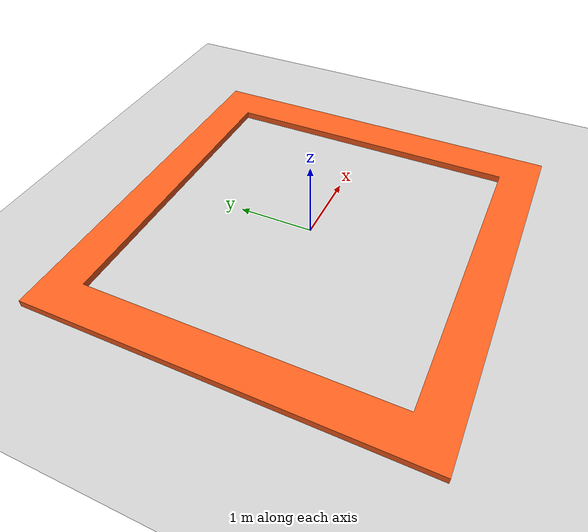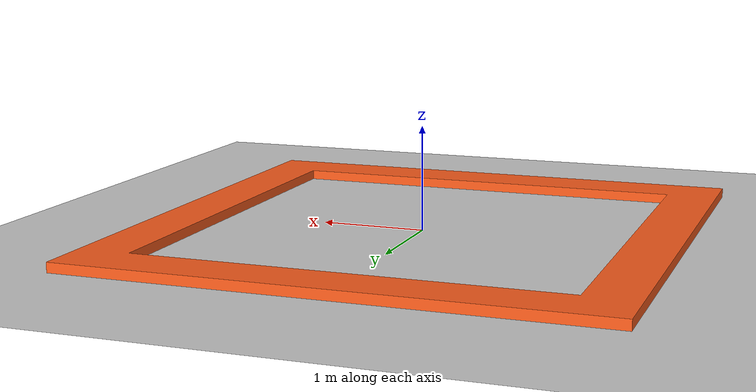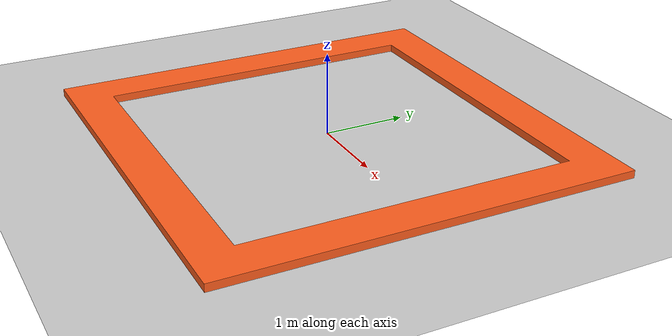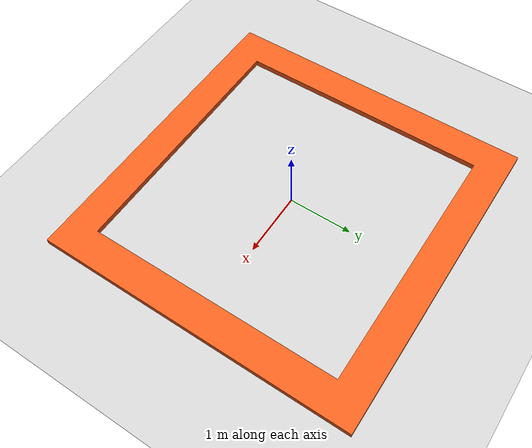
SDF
<?xml version="1.0"?>
<sdf version="1.4">
  <world name="testing">
    <include>
      <uri>model://ground_plane</uri>
    </include>
    <include>
      <uri>model://sun</uri>
    </include>
    <model name="testing">
      <pose>0 0 0  0 0 0</pose>
      <static>true</static>
      <link name="body">
        <visual name="visual">
          <geometry>
            <mesh><uri>file://8x8.dae</uri></mesh>
          </geometry>
        </visual>
      </link>
    </model>
  </world>
</sdf>
